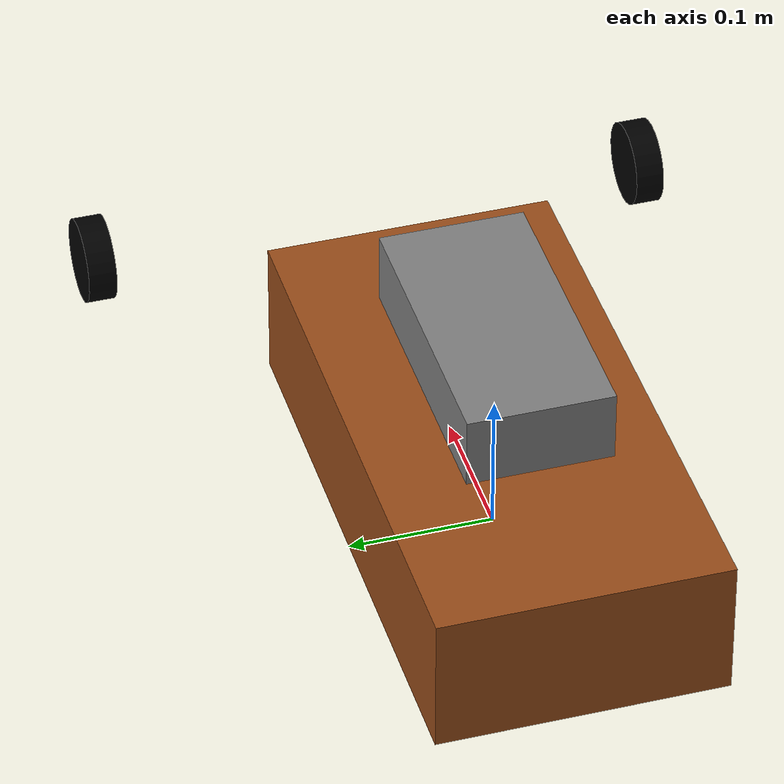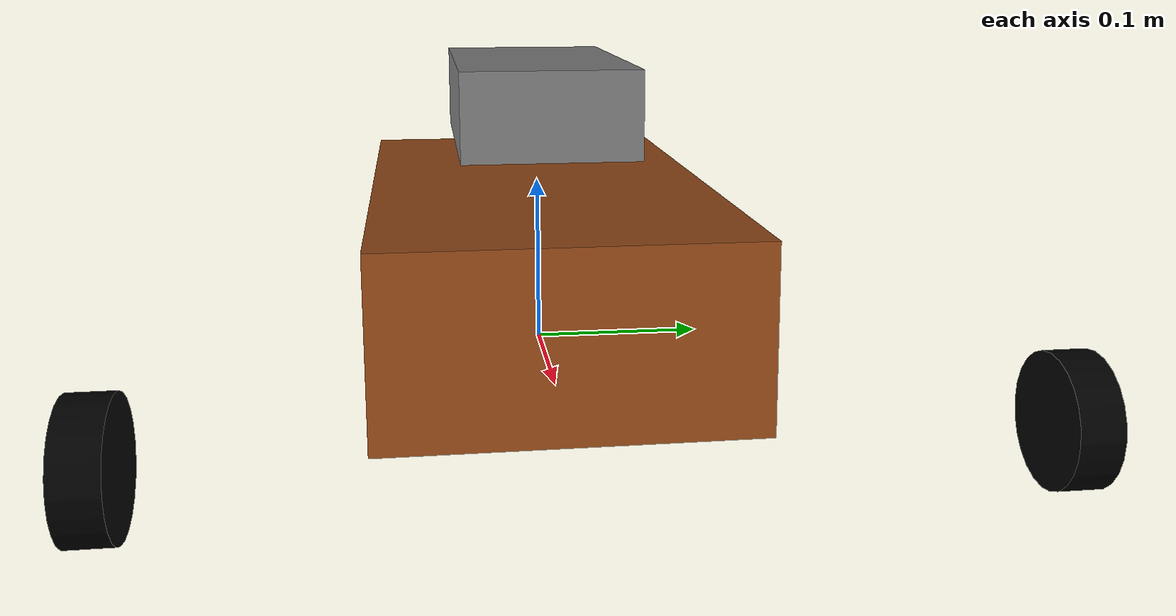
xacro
<robot name="dog_harness_device">

  <link name="dog_base">
    <visual>
      <geometry><box size="0.4 0.2 0.1" /></geometry>
      <origin xyz="0 0 0.05" />
      <material name="Brown"><color rgba="0.6 0.3 0.1 1.0" /></material>
    </visual>
    <collision>
      <geometry><box size="0.4 0.2 0.1" /></geometry>
      <origin xyz="0 0 0.05" />
    </collision>
    <inertial>
      <mass value="5.0" />
      <inertia ixx="0.05" ixy="0.0" ixz="0.0" iyy="0.05" iyz="0.0" izz="0.05" />
    </inertial>
  </link>

  <link name="harness_device">
    <visual>
      <geometry><box size="0.2 0.1 0.05" /></geometry>
      <origin xyz="0 0 0.15" />
      <material name="Gray"><color rgba="0.5 0.5 0.5 1.0" /></material>
    </visual>
    <collision>
      <geometry><box size="0.2 0.1 0.05" /></geometry>
      <origin xyz="0 0 0.15" />
    </collision>
    <inertial>
      <mass value="0.5" />
      <inertia ixx="0.01" ixy="0.0" ixz="0.0" iyy="0.01" iyz="0.0" izz="0.01" />
    </inertial>
  </link>

  <joint name="harness_mount" type="fixed">
    <parent link="dog_base" />
    <child link="harness_device" />
    <origin xyz="0 0 0" />
  </joint>

  <gazebo reference="harness_device">
    <sensor type="camera" name="forward_camera">
      <camera>
        <horizontal_fov>1.047</horizontal_fov>
        <image>
          <width>640</width>
          <height>480</height>
          <format>R8G8B8</format>
        </image>
        <clip>
          <near>0.1</near>
          <far>10.0</far>
        </clip>
      </camera>
      <plugin name="camera_controller" filename="libgazebo_ros_camera.so">
        <cameraName>forward_camera</cameraName>
        <imageTopicName>image_raw</imageTopicName>
        <cameraInfoTopicName>camera_info</cameraInfoTopicName>
        <frameName>harness_device</frameName>
      </plugin>
    </sensor>
  </gazebo>

  <gazebo reference="harness_device">
    <sensor type="ray" name="proximity_sensor_front">
      <ray>
        <range>
          <min>0.1</min>
          <max>2.0</max>
        </range>
        <scan>
          <horizontal>
            <samples>1</samples>
            <resolution>1</resolution>
            <min_angle>0</min_angle>
            <max_angle>0</max_angle>
          </horizontal>
        </scan>
      </ray>
      <plugin name="proximity_plugin" filename="libgazebo_ros_range.so">
        <topicName>proximity_front</topicName>
        <frameName>harness_device</frameName>
      </plugin>
    </sensor>
  </gazebo>
  <gazebo reference="harness_device">
  <sensor type="ray" name="garmin_lidar_v3">
    <pose>0 0 0.1 0 0 0</pose>
    <ray>
      <scan>
        <horizontal>
          <samples>1</samples>
          <resolution>1</resolution>
          <min_angle>0</min_angle>
          <max_angle>0</max_angle>
        </horizontal>
      </scan>
      <range>
        <min>0.05</min>
        <max>40</max>
      </range>
    </ray>
    <plugin name="garmin_lidar_plugin" filename="lib_range.so">
      <topicName>/garmin_lidar</topicName>
      <frameName>harness_device</frameName>
    </plugin>
  </sensor>
</gazebo>

<link name="left_wheel">
  <visual>
    <geometry><cylinder radius="0.03" length="0.02" /></geometry>
    <origin xyz="0.15 0.1 0.02" rpy="1.5708 0 0" />
    <material name="invisible"><color rgba="0 0 0 0" /></material>
  </visual>
  <inertial>
    <mass value="0.1" />
    <inertia ixx="0.001" ixy="0.0" ixz="0.0" iyy="0.001" iyz="0.0" izz="0.001" />
  </inertial>
</link>

<joint name="left_wheel_joint" type="continuous">
  <parent link="dog_base" />
  <child link="left_wheel" />
  <origin xyz="0.15 0.1 0.02" />
  <axis xyz="0 1 0" />
</joint>

<link name="right_wheel">
  <visual>
    <geometry><cylinder radius="0.03" length="0.02" /></geometry>
    <origin xyz="0.15 -0.1 0.02" rpy="1.5708 0 0" />
    <material name="invisible"><color rgba="0 0 0 0" /></material>
  </visual>
  <inertial>
    <mass value="0.1" />
    <inertia ixx="0.001" ixy="0.0" ixz="0.0" iyy="0.001" iyz="0.0" izz="0.001" />
  </inertial>
</link>
<joint name="right_wheel_joint" type="continuous">
  <parent link="dog_base" />
  <child link="right_wheel" />
  <origin xyz="0.15 -0.1 0.02" />
  <axis xyz="0 1 0" />
</joint>
<transmission name="left_wheel_trans">
  <type>transmission_interface/SimpleTransmission</type>
  <actuator name="left_wheel_motor">
    <hardwareInterface>hardware_interface/VelocityJointInterface</hardwareInterface>
    <mechanicalReduction>1</mechanicalReduction>
  </actuator>
</transmission>

<transmission name="right_wheel_trans">
  <type>transmission_interface/SimpleTransmission</type>
  <actuator name="right_wheel_motor">
    <hardwareInterface>hardware_interface/VelocityJointInterface</hardwareInterface>
    <mechanicalReduction>1</mechanicalReduction>
  </actuator>
</transmission>

<gazebo>
  <plugin name="gazebo_ros_control" filename="libgazebo_ros_control.so" />
</gazebo>

</robot>
